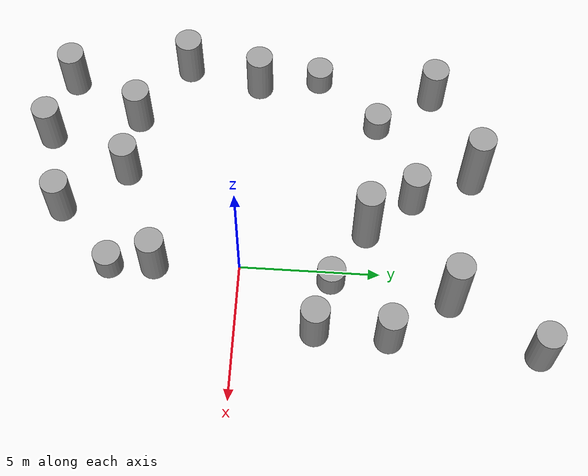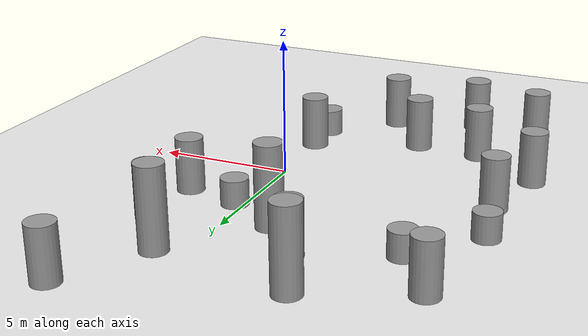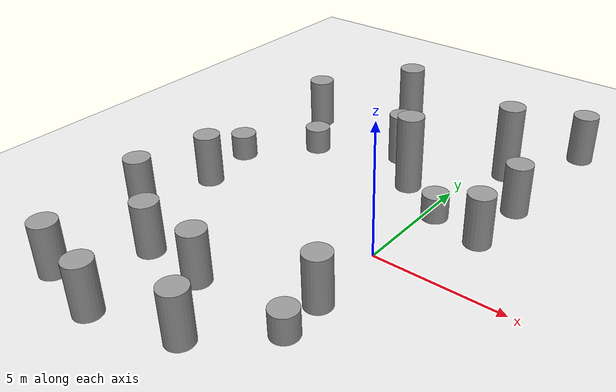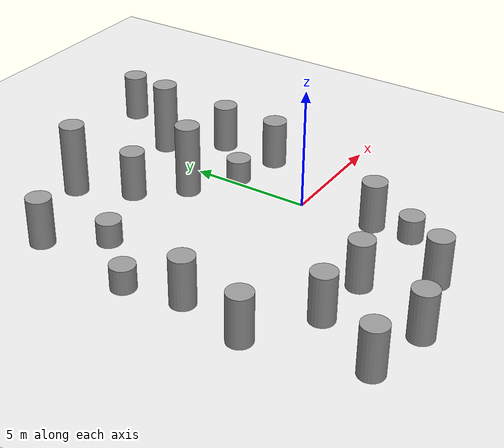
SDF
<sdf version="1.6">
 <world name="default">
  <model name="ground_plane">
   <static>1</static>
   <link name="link">
    <collision name="collision">
     <geometry><plane><normal>0 0 1</normal><size>100 100</size></plane></geometry>
     <surface><friction><ode><mu>100</mu><mu2>50</mu2></ode></friction></surface>
    </collision>
    <visual name="visual">
     <geometry><plane><normal>0 0 1</normal><size>100 100</size></plane></geometry>
     <material>
      <script><uri>file://media/materials/scripts/gazebo.material</uri><name>Gazebo/White</name></script>
     </material>
    </visual>
   </link>
  </model>
  <model name="unit_cylinder_5_clone">
   <link name="link">
    <inertial>
     <mass>1</mass>
     <inertia><ixx>0.145833</ixx><ixy>0</ixy><ixz>0</ixz><iyy>0.145833</iyy><iyz>0</iyz><izz>0.125</izz></inertia>
    </inertial>
    <visual name="visual">
     <geometry><cylinder><radius>0.5</radius><length>2</length></cylinder></geometry>
     <material>
      <script><name>Gazebo/Grey</name><uri>file://media/materials/scripts/gazebo.material</uri></script>
      <ambient>0.3 0.3 0.3 1</ambient>
      <diffuse>0.7 0.7 0.7 1</diffuse>
      <specular>0.01 0.01 0.01 1</specular>
      <emissive>0 0 0 1</emissive>
      <shader type="vertex"><normal_map>__default__</normal_map></shader>
     </material>
    </visual>
    <collision name="collision">
     <geometry><cylinder><radius>0.5</radius><length>2</length></cylinder></geometry>
     <surface>
      <friction>
       <ode><mu>1</mu><mu2>1</mu2><fdir1>0 0 0</fdir1><slip1>0</slip1><slip2>0</slip2></ode>
       <torsional>
        <coefficient>1</coefficient>
        <patch_radius>0</patch_radius>
        <surface_radius>0</surface_radius>
        <use_patch_radius>1</use_patch_radius>
        <ode><slip>0</slip></ode>
       </torsional>
      </friction>
      <bounce><restitution_coefficient>0</restitution_coefficient><threshold>1e+06</threshold></bounce>
      <contact>
       <collide_without_contact>0</collide_without_contact>
       <collide_without_contact_bitmask>1</collide_without_contact_bitmask>
       <collide_bitmask>1</collide_bitmask>
       <ode>
        <soft_cfm>0</soft_cfm>
        <soft_erp>0.2</soft_erp>
        <kp>1e+13</kp>
        <kd>1</kd>
        <max_vel>0.01</max_vel>
        <min_depth>0</min_depth>
       </ode>
       <bullet>
        <split_impulse>1</split_impulse>
        <split_impulse_penetration_threshold>-0.01</split_impulse_penetration_threshold>
        <soft_cfm>0</soft_cfm>
        <soft_erp>0.2</soft_erp>
        <kp>1e+13</kp>
        <kd>1</kd>
       </bullet>
      </contact>
     </surface>
    </collision>
   </link>
   <static>0</static>
   <pose>2.38828 2.78335 0.999884 2.2e-05 -1e-06 0.002315</pose>
  </model>
  <model name="unit_cylinder_5_clone_0">
   <link name="link">
    <inertial>
     <mass>1</mass>
     <inertia><ixx>0.145833</ixx><ixy>0</ixy><ixz>0</ixz><iyy>0.145833</iyy><iyz>0</iyz><izz>0.125</izz></inertia>
    </inertial>
    <visual name="visual">
     <geometry><cylinder><radius>0.5</radius><length>2</length></cylinder></geometry>
     <material>
      <script><name>Gazebo/Grey</name><uri>file://media/materials/scripts/gazebo.material</uri></script>
      <ambient>0.3 0.3 0.3 1</ambient>
      <diffuse>0.7 0.7 0.7 1</diffuse>
      <specular>0.01 0.01 0.01 1</specular>
      <emissive>0 0 0 1</emissive>
      <shader type="vertex"><normal_map>__default__</normal_map></shader>
     </material>
    </visual>
    <collision name="collision">
     <geometry><cylinder><radius>0.5</radius><length>2</length></cylinder></geometry>
     <surface>
      <friction>
       <ode><mu>1</mu><mu2>1</mu2><fdir1>0 0 0</fdir1><slip1>0</slip1><slip2>0</slip2></ode>
       <torsional>
        <coefficient>1</coefficient>
        <patch_radius>0</patch_radius>
        <surface_radius>0</surface_radius>
        <use_patch_radius>1</use_patch_radius>
        <ode><slip>0</slip></ode>
       </torsional>
      </friction>
      <bounce><restitution_coefficient>0</restitution_coefficient><threshold>1e+06</threshold></bounce>
      <contact>
       <collide_without_contact>0</collide_without_contact>
       <collide_without_contact_bitmask>1</collide_without_contact_bitmask>
       <collide_bitmask>1</collide_bitmask>
       <ode>
        <soft_cfm>0</soft_cfm>
        <soft_erp>0.2</soft_erp>
        <kp>1e+13</kp>
        <kd>1</kd>
        <max_vel>0.01</max_vel>
        <min_depth>0</min_depth>
       </ode>
       <bullet>
        <split_impulse>1</split_impulse>
        <split_impulse_penetration_threshold>-0.01</split_impulse_penetration_threshold>
        <soft_cfm>0</soft_cfm>
        <soft_erp>0.2</soft_erp>
        <kp>1e+13</kp>
        <kd>1</kd>
       </bullet>
      </contact>
     </surface>
    </collision>
   </link>
   <static>0</static>
   <pose>0.149287 -3.03613 0.999884 2.2e-05 -1e-06 0.002298</pose>
  </model>
  <model name="unit_cylinder_5_clone_3">
   <link name="link">
    <inertial>
     <mass>1</mass>
     <inertia><ixx>0.145833</ixx><ixy>0</ixy><ixz>0</ixz><iyy>0.145833</iyy><iyz>0</iyz><izz>0.125</izz></inertia>
    </inertial>
    <visual name="visual">
     <geometry><cylinder><radius>0.5</radius><length>2</length></cylinder></geometry>
     <material>
      <script><name>Gazebo/Grey</name><uri>file://media/materials/scripts/gazebo.material</uri></script>
      <ambient>0.3 0.3 0.3 1</ambient>
      <diffuse>0.7 0.7 0.7 1</diffuse>
      <specular>0.01 0.01 0.01 1</specular>
      <emissive>0 0 0 1</emissive>
      <shader type="vertex"><normal_map>__default__</normal_map></shader>
     </material>
    </visual>
    <collision name="collision">
     <geometry><cylinder><radius>0.5</radius><length>2</length></cylinder></geometry>
     <surface>
      <friction>
       <ode><mu>1</mu><mu2>1</mu2><fdir1>0 0 0</fdir1><slip1>0</slip1><slip2>0</slip2></ode>
       <torsional>
        <coefficient>1</coefficient>
        <patch_radius>0</patch_radius>
        <surface_radius>0</surface_radius>
        <use_patch_radius>1</use_patch_radius>
        <ode><slip>0</slip></ode>
       </torsional>
      </friction>
      <bounce><restitution_coefficient>0</restitution_coefficient><threshold>1e+06</threshold></bounce>
      <contact>
       <collide_without_contact>0</collide_without_contact>
       <collide_without_contact_bitmask>1</collide_without_contact_bitmask>
       <collide_bitmask>1</collide_bitmask>
       <ode>
        <soft_cfm>0</soft_cfm>
        <soft_erp>0.2</soft_erp>
        <kp>1e+13</kp>
        <kd>1</kd>
        <max_vel>0.01</max_vel>
        <min_depth>0</min_depth>
       </ode>
       <bullet>
        <split_impulse>1</split_impulse>
        <split_impulse_penetration_threshold>-0.01</split_impulse_penetration_threshold>
        <soft_cfm>0</soft_cfm>
        <soft_erp>0.2</soft_erp>
        <kp>1e+13</kp>
        <kd>1</kd>
       </bullet>
      </contact>
     </surface>
    </collision>
   </link>
   <static>0</static>
   <pose>-3.66733 -4.47285 0.999884 2.2e-05 -1e-06 0.000409</pose>
  </model>
  <model name="unit_cylinder_5_clone_4">
   <link name="link">
    <inertial>
     <mass>1</mass>
     <inertia><ixx>0.145833</ixx><ixy>0</ixy><ixz>0</ixz><iyy>0.145833</iyy><iyz>0</iyz><izz>0.125</izz></inertia>
    </inertial>
    <visual name="visual">
     <geometry><cylinder><radius>0.5</radius><length>2</length></cylinder></geometry>
     <material>
      <script><name>Gazebo/Grey</name><uri>file://media/materials/scripts/gazebo.material</uri></script>
      <ambient>0.3 0.3 0.3 1</ambient>
      <diffuse>0.7 0.7 0.7 1</diffuse>
      <specular>0.01 0.01 0.01 1</specular>
      <emissive>0 0 0 1</emissive>
      <shader type="vertex"><normal_map>__default__</normal_map></shader>
     </material>
    </visual>
    <collision name="collision">
     <geometry><cylinder><radius>0.5</radius><length>2</length></cylinder></geometry>
     <surface>
      <friction>
       <ode><mu>1</mu><mu2>1</mu2><fdir1>0 0 0</fdir1><slip1>0</slip1><slip2>0</slip2></ode>
       <torsional>
        <coefficient>1</coefficient>
        <patch_radius>0</patch_radius>
        <surface_radius>0</surface_radius>
        <use_patch_radius>1</use_patch_radius>
        <ode><slip>0</slip></ode>
       </torsional>
      </friction>
      <bounce><restitution_coefficient>0</restitution_coefficient><threshold>1e+06</threshold></bounce>
      <contact>
       <collide_without_contact>0</collide_without_contact>
       <collide_without_contact_bitmask>1</collide_without_contact_bitmask>
       <collide_bitmask>1</collide_bitmask>
       <ode>
        <soft_cfm>0</soft_cfm>
        <soft_erp>0.2</soft_erp>
        <kp>1e+13</kp>
        <kd>1</kd>
        <max_vel>0.01</max_vel>
        <min_depth>0</min_depth>
       </ode>
       <bullet>
        <split_impulse>1</split_impulse>
        <split_impulse_penetration_threshold>-0.01</split_impulse_penetration_threshold>
        <soft_cfm>0</soft_cfm>
        <soft_erp>0.2</soft_erp>
        <kp>1e+13</kp>
        <kd>1</kd>
       </bullet>
      </contact>
     </surface>
    </collision>
   </link>
   <static>0</static>
   <pose>-7.93374 0.169664 0.999884 2.2e-05 -1e-06 -0.003062</pose>
  </model>
  <model name="unit_cylinder_5_clone_5">
   <link name="link">
    <inertial>
     <mass>1</mass>
     <inertia><ixx>0.145833</ixx><ixy>0</ixy><ixz>0</ixz><iyy>0.145833</iyy><iyz>0</iyz><izz>0.125</izz></inertia>
    </inertial>
    <visual name="visual">
     <geometry><cylinder><radius>0.5</radius><length>2</length></cylinder></geometry>
     <material>
      <script><name>Gazebo/Grey</name><uri>file://media/materials/scripts/gazebo.material</uri></script>
      <ambient>0.3 0.3 0.3 1</ambient>
      <diffuse>0.7 0.7 0.7 1</diffuse>
      <specular>0.01 0.01 0.01 1</specular>
      <emissive>0 0 0 1</emissive>
      <shader type="vertex"><normal_map>__default__</normal_map></shader>
     </material>
    </visual>
    <collision name="collision">
     <geometry><cylinder><radius>0.5</radius><length>2</length></cylinder></geometry>
     <surface>
      <friction>
       <ode><mu>1</mu><mu2>1</mu2><fdir1>0 0 0</fdir1><slip1>0</slip1><slip2>0</slip2></ode>
       <torsional>
        <coefficient>1</coefficient>
        <patch_radius>0</patch_radius>
        <surface_radius>0</surface_radius>
        <use_patch_radius>1</use_patch_radius>
        <ode><slip>0</slip></ode>
       </torsional>
      </friction>
      <bounce><restitution_coefficient>0</restitution_coefficient><threshold>1e+06</threshold></bounce>
      <contact>
       <collide_without_contact>0</collide_without_contact>
       <collide_without_contact_bitmask>1</collide_without_contact_bitmask>
       <collide_bitmask>1</collide_bitmask>
       <ode>
        <soft_cfm>0</soft_cfm>
        <soft_erp>0.2</soft_erp>
        <kp>1e+13</kp>
        <kd>1</kd>
        <max_vel>0.01</max_vel>
        <min_depth>0</min_depth>
       </ode>
       <bullet>
        <split_impulse>1</split_impulse>
        <split_impulse_penetration_threshold>-0.01</split_impulse_penetration_threshold>
        <soft_cfm>0</soft_cfm>
        <soft_erp>0.2</soft_erp>
        <kp>1e+13</kp>
        <kd>1</kd>
       </bullet>
      </contact>
     </surface>
    </collision>
   </link>
   <static>0</static>
   <pose>-8.58869 -2.60629 0.999884 2.2e-05 -1e-06 -0.00547</pose>
  </model>
  <model name="unit_cylinder_0">
   <pose>0.360811 3.27692 0.499884 3e-06 -3e-06 -0.000418</pose>
   <link name="link">
    <inertial>
     <mass>1</mass>
     <inertia><ixx>0.145833</ixx><ixy>0</ixy><ixz>0</ixz><iyy>0.145833</iyy><iyz>0</iyz><izz>0.125</izz></inertia>
    </inertial>
    <collision name="collision">
     <geometry><cylinder><radius>0.5</radius><length>1</length></cylinder></geometry>
    </collision>
    <visual name="visual">
     <geometry><cylinder><radius>0.5</radius><length>1</length></cylinder></geometry>
     <material>
      <script><name>Gazebo/Grey</name><uri>file://media/materials/scripts/gazebo.material</uri></script>
     </material>
    </visual>
   </link>
  </model>
  <model name="unit_cylinder_1">
   <pose>0.210065 -4.63987 0.499884 3e-06 -3e-06 -0.000165</pose>
   <link name="link">
    <inertial>
     <mass>1</mass>
     <inertia><ixx>0.145833</ixx><ixy>0</ixy><ixz>0</ixz><iyy>0.145833</iyy><iyz>0</iyz><izz>0.125</izz></inertia>
    </inertial>
    <collision name="collision">
     <geometry><cylinder><radius>0.5</radius><length>1</length></cylinder></geometry>
    </collision>
    <visual name="visual">
     <geometry><cylinder><radius>0.5</radius><length>1</length></cylinder></geometry>
     <material>
      <script><name>Gazebo/Grey</name><uri>file://media/materials/scripts/gazebo.material</uri></script>
     </material>
    </visual>
   </link>
  </model>
  <model name="unit_cylinder_1_clone_0">
   <pose>-6.29638 4.76436 0.499972 -5.4e-05 5.5e-05 -0.000122</pose>
   <link name="link">
    <inertial>
     <mass>1</mass>
     <inertia><ixx>0.145833</ixx><ixy>0</ixy><ixz>0</ixz><iyy>0.145833</iyy><iyz>0</iyz><izz>0.125</izz></inertia>
    </inertial>
    <collision name="collision">
     <geometry><cylinder><radius>0.5</radius><length>1</length></cylinder></geometry>
    </collision>
    <visual name="visual">
     <geometry><cylinder><radius>0.5</radius><length>1</length></cylinder></geometry>
     <material>
      <script><name>Gazebo/Grey</name><uri>file://media/materials/scripts/gazebo.material</uri></script>
     </material>
    </visual>
   </link>
  </model>
  <model name="unit_cylinder_1_clone_1">
   <pose>-8.33577 2.47754 0.499972 -5.4e-05 5.5e-05 0.001407</pose>
   <link name="link">
    <inertial>
     <mass>1</mass>
     <inertia><ixx>0.145833</ixx><ixy>0</ixy><ixz>0</ixz><iyy>0.145833</iyy><iyz>0</iyz><izz>0.125</izz></inertia>
    </inertial>
    <collision name="collision">
     <geometry><cylinder><radius>0.5</radius><length>1</length></cylinder></geometry>
    </collision>
    <visual name="visual">
     <geometry><cylinder><radius>0.5</radius><length>1</length></cylinder></geometry>
     <material>
      <script><name>Gazebo/Grey</name><uri>file://media/materials/scripts/gazebo.material</uri></script>
     </material>
    </visual>
   </link>
  </model>
  <model name="unit_cylinder_5_clone_1_clone">
   <link name="link">
    <inertial>
     <mass>1</mass>
     <inertia><ixx>0.145833</ixx><ixy>0</ixy><ixz>0</ixz><iyy>0.145833</iyy><iyz>0</iyz><izz>0.125</izz></inertia>
    </inertial>
    <visual name="visual">
     <geometry><cylinder><radius>0.5</radius><length>2</length></cylinder></geometry>
     <material>
      <script><name>Gazebo/Grey</name><uri>file://media/materials/scripts/gazebo.material</uri></script>
      <ambient>0.3 0.3 0.3 1</ambient>
      <diffuse>0.7 0.7 0.7 1</diffuse>
      <specular>0.01 0.01 0.01 1</specular>
      <emissive>0 0 0 1</emissive>
      <shader type="vertex"><normal_map>__default__</normal_map></shader>
     </material>
    </visual>
    <collision name="collision">
     <geometry><cylinder><radius>0.5</radius><length>2</length></cylinder></geometry>
     <surface>
      <friction>
       <ode><mu>1</mu><mu2>1</mu2><fdir1>0 0 0</fdir1><slip1>0</slip1><slip2>0</slip2></ode>
       <torsional>
        <coefficient>1</coefficient>
        <patch_radius>0</patch_radius>
        <surface_radius>0</surface_radius>
        <use_patch_radius>1</use_patch_radius>
        <ode><slip>0</slip></ode>
       </torsional>
      </friction>
      <bounce><restitution_coefficient>0</restitution_coefficient><threshold>1e+06</threshold></bounce>
      <contact>
       <collide_without_contact>0</collide_without_contact>
       <collide_without_contact_bitmask>1</collide_without_contact_bitmask>
       <collide_bitmask>1</collide_bitmask>
       <ode>
        <soft_cfm>0</soft_cfm>
        <soft_erp>0.2</soft_erp>
        <kp>1e+13</kp>
        <kd>1</kd>
        <max_vel>0.01</max_vel>
        <min_depth>0</min_depth>
       </ode>
       <bullet>
        <split_impulse>1</split_impulse>
        <split_impulse_penetration_threshold>-0.01</split_impulse_penetration_threshold>
        <soft_cfm>0</soft_cfm>
        <soft_erp>0.2</soft_erp>
        <kp>1e+13</kp>
        <kd>1</kd>
       </bullet>
      </contact>
     </surface>
    </collision>
   </link>
   <static>0</static>
   <pose>2.48657 5.3464 0.999884 2.2e-05 -1e-06 -0.002392</pose>
  </model>
  <model name="unit_cylinder_5_clone_1_clone_0">
   <link name="link">
    <inertial>
     <mass>1</mass>
     <inertia><ixx>0.145833</ixx><ixy>0</ixy><ixz>0</ixz><iyy>0.145833</iyy><iyz>0</iyz><izz>0.125</izz></inertia>
    </inertial>
    <visual name="visual">
     <geometry><cylinder><radius>0.5</radius><length>2</length></cylinder></geometry>
     <material>
      <script><name>Gazebo/Grey</name><uri>file://media/materials/scripts/gazebo.material</uri></script>
      <ambient>0.3 0.3 0.3 1</ambient>
      <diffuse>0.7 0.7 0.7 1</diffuse>
      <specular>0.01 0.01 0.01 1</specular>
      <emissive>0 0 0 1</emissive>
      <shader type="vertex"><normal_map>__default__</normal_map></shader>
     </material>
    </visual>
    <collision name="collision">
     <geometry><cylinder><radius>0.5</radius><length>2</length></cylinder></geometry>
     <surface>
      <friction>
       <ode><mu>1</mu><mu2>1</mu2><fdir1>0 0 0</fdir1><slip1>0</slip1><slip2>0</slip2></ode>
       <torsional>
        <coefficient>1</coefficient>
        <patch_radius>0</patch_radius>
        <surface_radius>0</surface_radius>
        <use_patch_radius>1</use_patch_radius>
        <ode><slip>0</slip></ode>
       </torsional>
      </friction>
      <bounce><restitution_coefficient>0</restitution_coefficient><threshold>1e+06</threshold></bounce>
      <contact>
       <collide_without_contact>0</collide_without_contact>
       <collide_without_contact_bitmask>1</collide_without_contact_bitmask>
       <collide_bitmask>1</collide_bitmask>
       <ode>
        <soft_cfm>0</soft_cfm>
        <soft_erp>0.2</soft_erp>
        <kp>1e+13</kp>
        <kd>1</kd>
        <max_vel>0.01</max_vel>
        <min_depth>0</min_depth>
       </ode>
       <bullet>
        <split_impulse>1</split_impulse>
        <split_impulse_penetration_threshold>-0.01</split_impulse_penetration_threshold>
        <soft_cfm>0</soft_cfm>
        <soft_erp>0.2</soft_erp>
        <kp>1e+13</kp>
        <kd>1</kd>
       </bullet>
      </contact>
     </surface>
    </collision>
   </link>
   <static>0</static>
   <pose>-3.04049 6.13018 0.999884 2.2e-05 -1e-06 -0.001363</pose>
  </model>
  <model name="unit_cylinder_0_0_clone_clone">
   <link name="link">
    <inertial>
     <mass>1</mass>
     <inertia><ixx>0.145833</ixx><ixy>0</ixy><ixz>0</ixz><iyy>0.145833</iyy><iyz>0</iyz><izz>0.125</izz></inertia>
    </inertial>
    <visual name="visual">
     <geometry><cylinder><radius>0.5</radius><length>3</length></cylinder></geometry>
     <material>
      <script><name>Gazebo/Grey</name><uri>file://media/materials/scripts/gazebo.material</uri></script>
      <ambient>0.3 0.3 0.3 1</ambient>
      <diffuse>0.7 0.7 0.7 1</diffuse>
      <specular>0.01 0.01 0.01 1</specular>
      <emissive>0 0 0 1</emissive>
      <shader type="vertex"><normal_map>__default__</normal_map></shader>
     </material>
    </visual>
    <collision name="collision">
     <geometry><cylinder><radius>0.5</radius><length>3</length></cylinder></geometry>
     <surface>
      <friction>
       <ode><mu>1</mu><mu2>1</mu2><fdir1>0 0 0</fdir1><slip1>0</slip1><slip2>0</slip2></ode>
       <torsional>
        <coefficient>1</coefficient>
        <patch_radius>0</patch_radius>
        <surface_radius>0</surface_radius>
        <use_patch_radius>1</use_patch_radius>
        <ode><slip>0</slip></ode>
       </torsional>
      </friction>
      <bounce><restitution_coefficient>0</restitution_coefficient><threshold>1e+06</threshold></bounce>
      <contact>
       <collide_without_contact>0</collide_without_contact>
       <collide_without_contact_bitmask>1</collide_without_contact_bitmask>
       <collide_bitmask>1</collide_bitmask>
       <ode>
        <soft_cfm>0</soft_cfm>
        <soft_erp>0.2</soft_erp>
        <kp>1e+13</kp>
        <kd>1</kd>
        <max_vel>0.01</max_vel>
        <min_depth>0</min_depth>
       </ode>
       <bullet>
        <split_impulse>1</split_impulse>
        <split_impulse_penetration_threshold>-0.01</split_impulse_penetration_threshold>
        <soft_cfm>0</soft_cfm>
        <soft_erp>0.2</soft_erp>
        <kp>1e+13</kp>
        <kd>1</kd>
       </bullet>
      </contact>
     </surface>
    </collision>
   </link>
   <static>0</static>
   <pose>1.00231 7.45946 1.49988 4.7e-05 -4e-06 -0.006467</pose>
  </model>
  <model name="unit_cylinder_0_0_clone_clone_0">
   <link name="link">
    <inertial>
     <mass>1</mass>
     <inertia><ixx>0.145833</ixx><ixy>0</ixy><ixz>0</ixz><iyy>0.145833</iyy><iyz>0</iyz><izz>0.125</izz></inertia>
    </inertial>
    <visual name="visual">
     <geometry><cylinder><radius>0.5</radius><length>3</length></cylinder></geometry>
     <material>
      <script><name>Gazebo/Grey</name><uri>file://media/materials/scripts/gazebo.material</uri></script>
      <ambient>0.3 0.3 0.3 1</ambient>
      <diffuse>0.7 0.7 0.7 1</diffuse>
      <specular>0.01 0.01 0.01 1</specular>
      <emissive>0 0 0 1</emissive>
      <shader type="vertex"><normal_map>__default__</normal_map></shader>
     </material>
    </visual>
    <collision name="collision">
     <geometry><cylinder><radius>0.5</radius><length>3</length></cylinder></geometry>
     <surface>
      <friction>
       <ode><mu>1</mu><mu2>1</mu2><fdir1>0 0 0</fdir1><slip1>0</slip1><slip2>0</slip2></ode>
       <torsional>
        <coefficient>1</coefficient>
        <patch_radius>0</patch_radius>
        <surface_radius>0</surface_radius>
        <use_patch_radius>1</use_patch_radius>
        <ode><slip>0</slip></ode>
       </torsional>
      </friction>
      <bounce><restitution_coefficient>0</restitution_coefficient><threshold>1e+06</threshold></bounce>
      <contact>
       <collide_without_contact>0</collide_without_contact>
       <collide_without_contact_bitmask>1</collide_without_contact_bitmask>
       <collide_bitmask>1</collide_bitmask>
       <ode>
        <soft_cfm>0</soft_cfm>
        <soft_erp>0.2</soft_erp>
        <kp>1e+13</kp>
        <kd>1</kd>
        <max_vel>0.01</max_vel>
        <min_depth>0</min_depth>
       </ode>
       <bullet>
        <split_impulse>1</split_impulse>
        <split_impulse_penetration_threshold>-0.01</split_impulse_penetration_threshold>
        <soft_cfm>0</soft_cfm>
        <soft_erp>0.2</soft_erp>
        <kp>1e+13</kp>
        <kd>1</kd>
       </bullet>
      </contact>
     </surface>
    </collision>
   </link>
   <static>0</static>
   <pose>-4.03855 8.32066 1.49988 4.7e-05 -4e-06 -0.002883</pose>
  </model>
  <model name="unit_cylinder_0_0_clone_clone_1">
   <link name="link">
    <inertial>
     <mass>1</mass>
     <inertia><ixx>0.145833</ixx><ixy>0</ixy><ixz>0</ixz><iyy>0.145833</iyy><iyz>0</iyz><izz>0.125</izz></inertia>
    </inertial>
    <visual name="visual">
     <geometry><cylinder><radius>0.5</radius><length>3</length></cylinder></geometry>
     <material>
      <script><name>Gazebo/Grey</name><uri>file://media/materials/scripts/gazebo.material</uri></script>
      <ambient>0.3 0.3 0.3 1</ambient>
      <diffuse>0.7 0.7 0.7 1</diffuse>
      <specular>0.01 0.01 0.01 1</specular>
      <emissive>0 0 0 1</emissive>
      <shader type="vertex"><normal_map>__default__</normal_map></shader>
     </material>
    </visual>
    <collision name="collision">
     <geometry><cylinder><radius>0.5</radius><length>3</length></cylinder></geometry>
     <surface>
      <friction>
       <ode><mu>1</mu><mu2>1</mu2><fdir1>0 0 0</fdir1><slip1>0</slip1><slip2>0</slip2></ode>
       <torsional>
        <coefficient>1</coefficient>
        <patch_radius>0</patch_radius>
        <surface_radius>0</surface_radius>
        <use_patch_radius>1</use_patch_radius>
        <ode><slip>0</slip></ode>
       </torsional>
      </friction>
      <bounce><restitution_coefficient>0</restitution_coefficient><threshold>1e+06</threshold></bounce>
      <contact>
       <collide_without_contact>0</collide_without_contact>
       <collide_without_contact_bitmask>1</collide_without_contact_bitmask>
       <collide_bitmask>1</collide_bitmask>
       <ode>
        <soft_cfm>0</soft_cfm>
        <soft_erp>0.2</soft_erp>
        <kp>1e+13</kp>
        <kd>1</kd>
        <max_vel>0.01</max_vel>
        <min_depth>0</min_depth>
       </ode>
       <bullet>
        <split_impulse>1</split_impulse>
        <split_impulse_penetration_threshold>-0.01</split_impulse_penetration_threshold>
        <soft_cfm>0</soft_cfm>
        <soft_erp>0.2</soft_erp>
        <kp>1e+13</kp>
        <kd>1</kd>
       </bullet>
      </contact>
     </surface>
    </collision>
   </link>
   <static>0</static>
   <pose>-1.56798 4.46718 1.49988 4.7e-05 4e-06 0.003118</pose>
  </model>
  <model name="unit_cylinder_5_clone_0_clone_1">
   <link name="link">
    <inertial>
     <mass>1</mass>
     <inertia><ixx>0.145833</ixx><ixy>0</ixy><ixz>0</ixz><iyy>0.145833</iyy><iyz>0</iyz><izz>0.125</izz></inertia>
    </inertial>
    <visual name="visual">
     <geometry><cylinder><radius>0.5</radius><length>2</length></cylinder></geometry>
     <material>
      <script><name>Gazebo/Grey</name><uri>file://media/materials/scripts/gazebo.material</uri></script>
      <ambient>0.3 0.3 0.3 1</ambient>
      <diffuse>0.7 0.7 0.7 1</diffuse>
      <specular>0.01 0.01 0.01 1</specular>
      <emissive>0 0 0 1</emissive>
      <shader type="vertex"><normal_map>__default__</normal_map></shader>
     </material>
    </visual>
    <collision name="collision">
     <geometry><cylinder><radius>0.5</radius><length>2</length></cylinder></geometry>
     <surface>
      <friction>
       <ode><mu>1</mu><mu2>1</mu2><fdir1>0 0 0</fdir1><slip1>0</slip1><slip2>0</slip2></ode>
       <torsional>
        <coefficient>1</coefficient>
        <patch_radius>0</patch_radius>
        <surface_radius>0</surface_radius>
        <use_patch_radius>1</use_patch_radius>
        <ode><slip>0</slip></ode>
       </torsional>
      </friction>
      <bounce><restitution_coefficient>0</restitution_coefficient><threshold>1e+06</threshold></bounce>
      <contact>
       <collide_without_contact>0</collide_without_contact>
       <collide_without_contact_bitmask>1</collide_without_contact_bitmask>
       <collide_bitmask>1</collide_bitmask>
       <ode>
        <soft_cfm>0</soft_cfm>
        <soft_erp>0.2</soft_erp>
        <kp>1e+13</kp>
        <kd>1</kd>
        <max_vel>0.01</max_vel>
        <min_depth>0</min_depth>
       </ode>
       <bullet>
        <split_impulse>1</split_impulse>
        <split_impulse_penetration_threshold>-0.01</split_impulse_penetration_threshold>
        <soft_cfm>0</soft_cfm>
        <soft_erp>0.2</soft_erp>
        <kp>1e+13</kp>
        <kd>1</kd>
       </bullet>
      </contact>
     </surface>
    </collision>
   </link>
   <static>0</static>
   <pose>-1.98793 -6.68673 0.999884 2.2e-05 -1e-06 0.00217</pose>
  </model>
  <model name="unit_cylinder_5_clone_0_clone_6">
   <link name="link">
    <inertial>
     <mass>1</mass>
     <inertia><ixx>0.145833</ixx><ixy>0</ixy><ixz>0</ixz><iyy>0.145833</iyy><iyz>0</iyz><izz>0.125</izz></inertia>
    </inertial>
    <visual name="visual">
     <geometry><cylinder><radius>0.5</radius><length>2</length></cylinder></geometry>
     <material>
      <script><name>Gazebo/Grey</name><uri>file://media/materials/scripts/gazebo.material</uri></script>
      <ambient>0.3 0.3 0.3 1</ambient>
      <diffuse>0.7 0.7 0.7 1</diffuse>
      <specular>0.01 0.01 0.01 1</specular>
      <emissive>0 0 0 1</emissive>
      <shader type="vertex"><normal_map>__default__</normal_map></shader>
     </material>
    </visual>
    <collision name="collision">
     <geometry><cylinder><radius>0.5</radius><length>2</length></cylinder></geometry>
     <surface>
      <friction>
       <ode><mu>1</mu><mu2>1</mu2><fdir1>0 0 0</fdir1><slip1>0</slip1><slip2>0</slip2></ode>
       <torsional>
        <coefficient>1</coefficient>
        <patch_radius>0</patch_radius>
        <surface_radius>0</surface_radius>
        <use_patch_radius>1</use_patch_radius>
        <ode><slip>0</slip></ode>
       </torsional>
      </friction>
      <bounce><restitution_coefficient>0</restitution_coefficient><threshold>1e+06</threshold></bounce>
      <contact>
       <collide_without_contact>0</collide_without_contact>
       <collide_without_contact_bitmask>1</collide_without_contact_bitmask>
       <collide_bitmask>1</collide_bitmask>
       <ode>
        <soft_cfm>0</soft_cfm>
        <soft_erp>0.2</soft_erp>
        <kp>1e+13</kp>
        <kd>1</kd>
        <max_vel>0.01</max_vel>
        <min_depth>0</min_depth>
       </ode>
       <bullet>
        <split_impulse>1</split_impulse>
        <split_impulse_penetration_threshold>-0.01</split_impulse_penetration_threshold>
        <soft_cfm>0</soft_cfm>
        <soft_erp>0.2</soft_erp>
        <kp>1e+13</kp>
        <kd>1</kd>
       </bullet>
      </contact>
     </surface>
    </collision>
   </link>
   <static>0</static>
   <pose>-7.74649 6.83601 0.999884 2.2e-05 -1e-06 0.001447</pose>
  </model>
  <model name="unit_cylinder_5_clone_0_clone_7">
   <link name="link">
    <inertial>
     <mass>1</mass>
     <inertia><ixx>0.145833</ixx><ixy>0</ixy><ixz>0</ixz><iyy>0.145833</iyy><iyz>0</iyz><izz>0.125</izz></inertia>
    </inertial>
    <visual name="visual">
     <geometry><cylinder><radius>0.5</radius><length>2</length></cylinder></geometry>
     <material>
      <script><name>Gazebo/Grey</name><uri>file://media/materials/scripts/gazebo.material</uri></script>
      <ambient>0.3 0.3 0.3 1</ambient>
      <diffuse>0.7 0.7 0.7 1</diffuse>
      <specular>0.01 0.01 0.01 1</specular>
      <emissive>0 0 0 1</emissive>
      <shader type="vertex"><normal_map>__default__</normal_map></shader>
     </material>
    </visual>
    <collision name="collision">
     <geometry><cylinder><radius>0.5</radius><length>2</length></cylinder></geometry>
     <surface>
      <friction>
       <ode><mu>1</mu><mu2>1</mu2><fdir1>0 0 0</fdir1><slip1>0</slip1><slip2>0</slip2></ode>
       <torsional>
        <coefficient>1</coefficient>
        <patch_radius>0</patch_radius>
        <surface_radius>0</surface_radius>
        <use_patch_radius>1</use_patch_radius>
        <ode><slip>0</slip></ode>
       </torsional>
      </friction>
      <bounce><restitution_coefficient>0</restitution_coefficient><threshold>1e+06</threshold></bounce>
      <contact>
       <collide_without_contact>0</collide_without_contact>
       <collide_without_contact_bitmask>1</collide_without_contact_bitmask>
       <collide_bitmask>1</collide_bitmask>
       <ode>
        <soft_cfm>0</soft_cfm>
        <soft_erp>0.2</soft_erp>
        <kp>1e+13</kp>
        <kd>1</kd>
        <max_vel>0.01</max_vel>
        <min_depth>0</min_depth>
       </ode>
       <bullet>
        <split_impulse>1</split_impulse>
        <split_impulse_penetration_threshold>-0.01</split_impulse_penetration_threshold>
        <soft_cfm>0</soft_cfm>
        <soft_erp>0.2</soft_erp>
        <kp>1e+13</kp>
        <kd>1</kd>
       </bullet>
      </contact>
     </surface>
    </collision>
   </link>
   <static>0</static>
   <pose>-6.09067 -4.32212 0.999884 2.2e-05 -1e-06 0.000922</pose>
  </model>
  <model name="unit_cylinder_5_clone_0_clone_8">
   <link name="link">
    <inertial>
     <mass>1</mass>
     <inertia><ixx>0.145833</ixx><ixy>0</ixy><ixz>0</ixz><iyy>0.145833</iyy><iyz>0</iyz><izz>0.125</izz></inertia>
    </inertial>
    <visual name="visual">
     <geometry><cylinder><radius>0.5</radius><length>2</length></cylinder></geometry>
     <material>
      <script><name>Gazebo/Grey</name><uri>file://media/materials/scripts/gazebo.material</uri></script>
      <ambient>0.3 0.3 0.3 1</ambient>
      <diffuse>0.7 0.7 0.7 1</diffuse>
      <specular>0.01 0.01 0.01 1</specular>
      <emissive>0 0 0 1</emissive>
      <shader type="vertex"><normal_map>__default__</normal_map></shader>
     </material>
    </visual>
    <collision name="collision">
     <geometry><cylinder><radius>0.5</radius><length>2</length></cylinder></geometry>
     <surface>
      <friction>
       <ode><mu>1</mu><mu2>1</mu2><fdir1>0 0 0</fdir1><slip1>0</slip1><slip2>0</slip2></ode>
       <torsional>
        <coefficient>1</coefficient>
        <patch_radius>0</patch_radius>
        <surface_radius>0</surface_radius>
        <use_patch_radius>1</use_patch_radius>
        <ode><slip>0</slip></ode>
       </torsional>
      </friction>
      <bounce><restitution_coefficient>0</restitution_coefficient><threshold>1e+06</threshold></bounce>
      <contact>
       <collide_without_contact>0</collide_without_contact>
       <collide_without_contact_bitmask>1</collide_without_contact_bitmask>
       <collide_bitmask>1</collide_bitmask>
       <ode>
        <soft_cfm>0</soft_cfm>
        <soft_erp>0.2</soft_erp>
        <kp>1e+13</kp>
        <kd>1</kd>
        <max_vel>0.01</max_vel>
        <min_depth>0</min_depth>
       </ode>
       <bullet>
        <split_impulse>1</split_impulse>
        <split_impulse_penetration_threshold>-0.01</split_impulse_penetration_threshold>
        <soft_cfm>0</soft_cfm>
        <soft_erp>0.2</soft_erp>
        <kp>1e+13</kp>
        <kd>1</kd>
       </bullet>
      </contact>
     </surface>
    </collision>
   </link>
   <static>0</static>
   <pose>-7.67513 -7.00939 0.999884 2.2e-05 -1e-06 0.000229</pose>
  </model>
  <model name="unit_cylinder_5_clone_0_clone_9">
   <link name="link">
    <inertial>
     <mass>1</mass>
     <inertia><ixx>0.145833</ixx><ixy>0</ixy><ixz>0</ixz><iyy>0.145833</iyy><iyz>0</iyz><izz>0.125</izz></inertia>
    </inertial>
    <visual name="visual">
     <geometry><cylinder><radius>0.5</radius><length>2</length></cylinder></geometry>
     <material>
      <script><name>Gazebo/Grey</name><uri>file://media/materials/scripts/gazebo.material</uri></script>
      <ambient>0.3 0.3 0.3 1</ambient>
      <diffuse>0.7 0.7 0.7 1</diffuse>
      <specular>0.01 0.01 0.01 1</specular>
      <emissive>0 0 0 1</emissive>
      <shader type="vertex"><normal_map>__default__</normal_map></shader>
     </material>
    </visual>
    <collision name="collision">
     <geometry><cylinder><radius>0.5</radius><length>2</length></cylinder></geometry>
     <surface>
      <friction>
       <ode><mu>1</mu><mu2>1</mu2><fdir1>0 0 0</fdir1><slip1>0</slip1><slip2>0</slip2></ode>
       <torsional>
        <coefficient>1</coefficient>
        <patch_radius>0</patch_radius>
        <surface_radius>0</surface_radius>
        <use_patch_radius>1</use_patch_radius>
        <ode><slip>0</slip></ode>
       </torsional>
      </friction>
      <bounce><restitution_coefficient>0</restitution_coefficient><threshold>1e+06</threshold></bounce>
      <contact>
       <collide_without_contact>0</collide_without_contact>
       <collide_without_contact_bitmask>1</collide_without_contact_bitmask>
       <collide_bitmask>1</collide_bitmask>
       <ode>
        <soft_cfm>0</soft_cfm>
        <soft_erp>0.2</soft_erp>
        <kp>1e+13</kp>
        <kd>1</kd>
        <max_vel>0.01</max_vel>
        <min_depth>0</min_depth>
       </ode>
       <bullet>
        <split_impulse>1</split_impulse>
        <split_impulse_penetration_threshold>-0.01</split_impulse_penetration_threshold>
        <soft_cfm>0</soft_cfm>
        <soft_erp>0.2</soft_erp>
        <kp>1e+13</kp>
        <kd>1</kd>
       </bullet>
      </contact>
     </surface>
    </collision>
   </link>
   <static>0</static>
   <pose>-5.11629 -7.54674 0.999884 2.2e-05 -1e-06 0.000681</pose>
  </model>
  <model name="unit_cylinder_5_clone_0_clone_4_clone">
   <link name="link">
    <inertial>
     <mass>1</mass>
     <inertia><ixx>0.145833</ixx><ixy>0</ixy><ixz>0</ixz><iyy>0.145833</iyy><iyz>0</iyz><izz>0.125</izz></inertia>
    </inertial>
    <visual name="visual">
     <geometry><cylinder><radius>0.5</radius><length>2</length></cylinder></geometry>
     <material>
      <script><name>Gazebo/Grey</name><uri>file://media/materials/scripts/gazebo.material</uri></script>
      <ambient>0.3 0.3 0.3 1</ambient>
      <diffuse>0.7 0.7 0.7 1</diffuse>
      <specular>0.01 0.01 0.01 1</specular>
      <emissive>0 0 0 1</emissive>
      <shader type="vertex"><normal_map>__default__</normal_map></shader>
     </material>
    </visual>
    <collision name="collision">
     <geometry><cylinder><radius>0.5</radius><length>2</length></cylinder></geometry>
     <surface>
      <friction>
       <ode><mu>1</mu><mu2>1</mu2><fdir1>0 0 0</fdir1><slip1>0</slip1><slip2>0</slip2></ode>
       <torsional>
        <coefficient>1</coefficient>
        <patch_radius>0</patch_radius>
        <surface_radius>0</surface_radius>
        <use_patch_radius>1</use_patch_radius>
        <ode><slip>0</slip></ode>
       </torsional>
      </friction>
      <bounce><restitution_coefficient>0</restitution_coefficient><threshold>1e+06</threshold></bounce>
      <contact>
       <collide_without_contact>0</collide_without_contact>
       <collide_without_contact_bitmask>1</collide_without_contact_bitmask>
       <collide_bitmask>1</collide_bitmask>
       <ode>
        <soft_cfm>0</soft_cfm>
        <soft_erp>0.2</soft_erp>
        <kp>1e+13</kp>
        <kd>1</kd>
        <max_vel>0.01</max_vel>
        <min_depth>0</min_depth>
       </ode>
       <bullet>
        <split_impulse>1</split_impulse>
        <split_impulse_penetration_threshold>-0.01</split_impulse_penetration_threshold>
        <soft_cfm>0</soft_cfm>
        <soft_erp>0.2</soft_erp>
        <kp>1e+13</kp>
        <kd>1</kd>
       </bullet>
      </contact>
     </surface>
    </collision>
   </link>
   <static>0</static>
   <pose>2.81053 10.5041 0.999884 2.2e-05 -2e-06 0.001444</pose>
  </model>
 </world>
</sdf>
